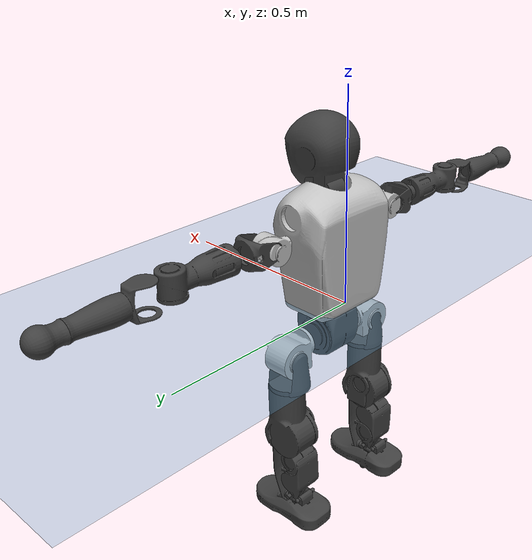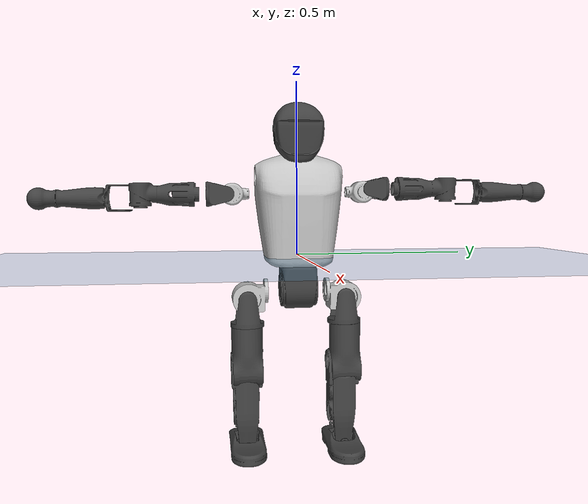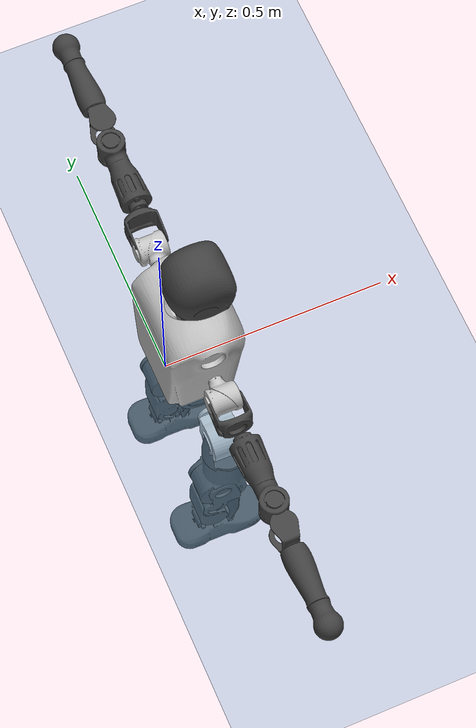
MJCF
<mujoco model="T1">
  <compiler angle="radian" assetdir="assets" balanceinertia="true" inertiafromgeom="false"/>

  <option timestep="0.005" density="1.2" viscosity="2e-05"/>

  <size nkey="1"/>

  <visual>
    <quality shadowsize="8192"/>
    <map shadowclip="0.5"/>
  </visual>

  <default>
    <default class="/">
      <joint armature="0.01" damping="0.01" frictionloss="0.1"/>
      <geom contype="0" conaffinity="0" group="1" solref="-1000 -80"/>
      <site size="0.01 0.005 0.005" group="5"/>
      <general forcelimited="true" biastype="affine" gainprm="25" biasprm="0 -25 -0.6"/>
      <default class="t1">
        <geom rgba="0.25 0.25 0.25 1"/>
        <default class="visual">
          <geom type="mesh" group="2"/>
        </default>
        <default class="collision">
          <geom group="3"/>
        </default>
        <default class="foot">
          <geom size="0.1115 0.05 0.015" type="box" condim="6" group="4" priority="1" solimp="0.015 1 0.015"/>
        </default>
        <default class="reward_collision_sphere">
          <geom group="5" rgba="1 0 0 1"/>
        </default>
      </default>
    </default>
  </default>

  <asset>
    <texture type="skybox" colorspace="auto" name="//unnamed_texture_0" builtin="gradient" rgb1="0.95 0.95 0.95" rgb2="0.95 0.95 0.95" width="100" height="600"/>
    <texture type="2d" colorspace="auto" name="texplane" builtin="checker" rgb1="0.345 0.575 0.748" rgb2="0.345 0.575 0.748" markrgb="1 1 1" width="512" height="512"/>
    <material name="MatPlane" class="/" texture="texplane" texuniform="true" texrepeat="2 2" specular="0.9"/>
    <mesh name="Trunk" class="/" file="Trunk.stl"/>
    <mesh name="H1" class="/" file="H1.stl"/>
    <mesh name="H2" class="/" file="H2.stl"/>
    <mesh name="AL1" class="/" file="AL1.stl"/>
    <mesh name="AL2" class="/" file="AL2.stl"/>
    <mesh name="AL3" class="/" file="AL3.stl"/>
    <mesh name="left_hand_link" class="/" file="left_hand_link.stl"/>
    <mesh name="AR1" class="/" file="AR1.stl"/>
    <mesh name="AR2" class="/" file="AR2.stl"/>
    <mesh name="AR3" class="/" file="AR3.stl"/>
    <mesh name="right_hand_link" class="/" file="right_hand_link.stl"/>
    <mesh name="Waist" class="/" file="Waist.stl"/>
    <mesh name="Hip_Pitch_Left" class="/" file="Hip_Pitch_Left.stl"/>
    <mesh name="Hip_Roll_Left" class="/" file="Hip_Roll_Left.stl"/>
    <mesh name="Hip_Yaw_Left" class="/" file="Hip_Yaw_Left.stl"/>
    <mesh name="Shank_Left" class="/" file="Shank_Left.stl"/>
    <mesh name="Ankle_Cross_Left" class="/" file="Ankle_Cross_Left.stl"/>
    <mesh name="left_foot_link" class="/" file="left_foot_link.stl"/>
    <mesh name="Hip_Pitch_Right" class="/" file="Hip_Pitch_Right.stl"/>
    <mesh name="Hip_Roll_Right" class="/" file="Hip_Roll_Right.stl"/>
    <mesh name="Hip_Yaw_Right" class="/" file="Hip_Yaw_Right.stl"/>
    <mesh name="Shank_Right" class="/" file="Shank_Right.stl"/>
    <mesh name="Ankle_Cross_Right" class="/" file="Ankle_Cross_Right.stl"/>
    <mesh name="right_foot_link" class="/" file="right_foot_link.stl"/>
  </asset>

  <worldbody>
    <geom name="floor" class="/" size="100 100 0.125" type="plane" group="0" material="MatPlane"/>
    <light name="toplight_shadow" class="/" pos="0 0 5" dir="0.0990148 0.0990148 -0.990148" type="directional" ambient="0.04 0.04 0.04" diffuse="0.55 0.55 0.55" specular="0.12 0.12 0.12"/>
    <light name="toplight_fill" class="/" pos="0 0 5" dir="0.0990148 0.0990148 -0.990148" type="directional" castshadow="false" ambient="0.04 0.04 0.04" diffuse="0.3 0.3 0.3" specular="0.08 0.08 0.08"/>
    <body name="trunk" childclass="t1" pos="-0.000631472 -0.00409952 0.00836613" quat="0.999989 0.00299792 0.00321541 0.00152816">
      <inertial pos="0.0566658 -0.00155353 0.0866773" quat="0.999952 -0.000127981 -0.00980064 0.000228377" mass="15.0261" diaginertia="0.10822 0.360792 0.0210254"/>
      <joint name="//unnamed_joint_0" type="free" armature="0" damping="0" frictionloss="0"/>
      <geom name="//unnamed_geom_1" class="visual" rgba="0.76 0.76 0.76 1" mesh="Trunk"/>
      <geom name="//unnamed_geom_2" class="collision" size="0.0789285 0.105238 0.157857" pos="0.0605332 0 0.0962535" type="box"/>
      <geom name="//unnamed_geom_3" class="reward_collision_sphere" size="0.121024" pos="0.0605332 0 0.0802112"/>
      <geom name="//unnamed_geom_4" class="reward_collision_sphere" size="0.0157857" pos="0.0605332 0.114422 0"/>
      <geom name="//unnamed_geom_5" class="reward_collision_sphere" size="0.0157857" pos="0.0605332 -0.114422 0"/>
      <geom name="//unnamed_geom_6" class="reward_collision_sphere" size="0.0157857" pos="0.0605332 0.144037 0.14438"/>
      <geom name="//unnamed_geom_7" class="reward_collision_sphere" size="0.0157857" pos="0.0605332 -0.144037 0.14438"/>
      <site name="imu" pos="0.0408496 -0.00961439 -0.00620625" size="0.0105238"/>
      <camera name="track" pos="0 -2.69228 0" quat="0.707107 0.707107 0 0" mode="trackcom"/>
      <camera name="ego_camera" pos="0.123084 0 0.336887" quat="-0.5 -0.5 0.5 0.5"/>
      <body name="H1" pos="0.0585151 -0.00101239 0.189856" quat="0.999993 -0.00154445 0.00327165 -0.00125876">
        <inertial pos="-0.00669722 -0.00442583 0.0464313" quat="0.763296 -0.0146611 0.0117972 0.645775" mass="0.498434" diaginertia="0.000246908 0.000913747 5.34173e-05"/>
        <joint name="AAHead_yaw" pos="0 0 0" axis="0.00979644 0.00105994 0.999951" stiffness="0.00087359" range="-1.3711 1.56996" armature="0.0114547" damping="0.0179803" frictionloss="0.0987445"/>
        <geom name="//unnamed_geom_8" class="visual" mesh="H1"/>
        <body name="H2" pos="-0.000850796 1.17218e-05 0.0442687" quat="0.99999 0.00441823 3.07696e-05 0.000120289">
          <inertial pos="0.00783957 0.00250395 0.0784936" quat="0.98847 0.106213 -0.0743672 -0.0781954" mass="0.828534" diaginertia="0.00228347 0.00919389 0.000576412"/>
          <joint name="Head_pitch" pos="0 0 0" axis="0.0355544 -0.999212 0.0176667" stiffness="0.0072295" range="-1.11835 0.184337" armature="0.00692757" damping="0" frictionloss="0.0585618"/>
          <geom name="//unnamed_geom_9" class="visual" mesh="H2"/>
          <geom name="//unnamed_geom_10" class="collision" size="0.0841904" pos="0.0100889 0 0.0882323"/>
          <geom name="//unnamed_geom_11" class="reward_collision_sphere" size="0.0947142" pos="0.0201777 0 0.0802112"/>
        </body>
      </body>
      <body name="AL1" pos="0.0497359 0.139856 0.173076" quat="0.999999 -0.0010523 0.000564655 -0.000718737">
        <inertial pos="0.00833193 0.0621407 0.00208589" quat="0.509764 0.514473 -0.493412 0.481667" mass="0.643031" diaginertia="0.00149352 0.00522856 9.90588e-05"/>
        <joint name="Left_Shoulder_Pitch" pos="0 0 0" axis="0.00143153 0.999981 -0.00593108" stiffness="0.00162189" range="-3.3269 1.21482" armature="0.0113137" damping="0" frictionloss="0.11293"/>
        <geom name="//unnamed_geom_12" class="visual" rgba="0.76 0.76 0.76 1" mesh="AL1"/>
        <body name="AL2" pos="0.00120679 0.0655443 0.00912936" quat="0.999991 -0.000791603 -0.00174231 -0.00367423">
          <inertial pos="0.00524907 0.0490027 0.0070596" quat="0.49536 0.510725 -0.484746 0.508725" mass="0.176271" diaginertia="0.000425524 0.00162977 5.99222e-05"/>
          <joint name="Left_Shoulder_Roll" pos="0 0 0" axis="-0.999119 0.00129603 0.0419435" range="-1.54988 1.7292" armature="0.011409" damping="0.0116302" frictionloss="0.148932"/>
          <geom name="//unnamed_geom_13" class="visual" mesh="AL2"/>
          <body name="AL3" pos="0.00871009 0.0837883 -0.000193977" quat="0.999999 -0.000922551 -0.000627916 -0.000686804">
            <inertial pos="-0.00110333 0.115251 -0.00732289" quat="0.706114 0.708098 0.000589393 0.000676929" mass="1.16426" diaginertia="0.0131772 0.0554077 0.000214223"/>
            <joint name="Left_Elbow_Pitch" pos="0 0 0" axis="-0.0184977 -0.999277 0.0332066" range="-2.25176 2.25218" armature="0.0107539" damping="0.000854222" frictionloss="0.0968572"/>
            <geom name="//unnamed_geom_14" class="visual" mesh="AL3"/>
            <geom name="//unnamed_geom_15" class="collision" size="0.0315714 0.0789285" pos="0 0.0673071 0" quat="0.707105 0.707108 0 0" type="cylinder"/>
            <geom name="//unnamed_geom_16" class="reward_collision_sphere" size="0.0378857"/>
            <body name="left_hand_link" pos="0.00421892 0.205844 -0.00925584" quat="1 -4.91278e-05 0.000294337 0.000316978">
              <inertial pos="-0.000280712 0.145365 -0.00456046" quat="0.704533 0.709623 0.00479421 0.00670155" mass="0.344874" diaginertia="0.00838382 0.0300731 6.34086e-05"/>
              <joint name="Left_Elbow_Yaw" pos="0 0 0" axis="0.0195427 -0.0294769 0.999374" stiffness="0.0229023" range="-2.44937 0.0401297" armature="0.0116831" damping="0.018798" frictionloss="0.0844918"/>
              <geom name="//unnamed_geom_17" class="visual" mesh="left_hand_link"/>
              <geom name="//unnamed_geom_18" class="collision" size="0.0315714 0.0920833" pos="0 0.174998 0" quat="0.707105 0.707108 0 0" type="cylinder"/>
              <geom name="//unnamed_geom_19" class="reward_collision_sphere" size="0.052619"/>
              <geom name="//unnamed_geom_20" class="reward_collision_sphere" size="0.0368333" pos="0 0.148076 0"/>
              <geom name="//unnamed_geom_21" class="reward_collision_sphere" size="0.0368333" pos="0 0.289421 0"/>
            </body>
          </body>
        </body>
      </body>
      <body name="AR1" pos="0.0525176 -0.139668 0.169183" quat="0.999992 0.00325535 0.00212703 -0.00102236">
        <inertial pos="-0.00119985 -0.0586234 0.000710622" quat="0.494571 0.499201 -0.506503 0.499653" mass="0.609401" diaginertia="0.00155547 0.00584781 9.65361e-05"/>
        <joint name="Right_Shoulder_Pitch" pos="0 0 0" axis="-0.000697862 -0.999998 0.00192614" stiffness="0.0325865" range="-1.21681 3.22765" armature="0.0105011" damping="0.0366312" frictionloss="0.115207"/>
        <geom name="//unnamed_geom_22" class="visual" rgba="0.76 0.76 0.76 1" mesh="AR1"/>
        <body name="AR2" pos="-0.000505031 -0.0632361 0.00015722" quat="0.999998 -0.00164439 -0.000979001 -0.000157876">
          <inertial pos="0.00525595 -0.0499143 -0.00439986" quat="0.513765 0.487417 -0.504862 0.493542" mass="0.204491" diaginertia="0.000373523 0.00151034 6.43572e-05"/>
          <joint name="Right_Shoulder_Roll" pos="0 0 0" axis="-0.999923 0.0124356 0.000366499" range="-1.73568 1.58804" armature="0.0104806" damping="0" frictionloss="0.0683569"/>
          <geom name="//unnamed_geom_23" class="visual" mesh="AR2"/>
          <body name="AR3" pos="0.00100372 -0.0877615 0.000175241" quat="1 -8.70239e-05 -1.51442e-05 8.22784e-05">
            <inertial pos="0.00886981 -0.112672 0.000749689" quat="0.697813 0.716002 -0.0173335 0.00985482" mass="1.08056" diaginertia="0.0143248 0.0618595 0.000205632"/>
            <joint name="Right_Elbow_Pitch" pos="0 0 0" axis="-0.00119116 0.99991 0.013395" stiffness="0.0458795" range="-2.2809 2.31991" armature="0.0137888" damping="0.0073311" frictionloss="0.0952293"/>
            <geom name="//unnamed_geom_24" class="visual" mesh="AR3"/>
            <geom name="//unnamed_geom_25" class="collision" size="0.0315714 0.0789285" pos="0 -0.0673071 0" quat="0.707105 0.707108 0 0" type="cylinder"/>
            <geom name="//unnamed_geom_26" class="reward_collision_sphere" size="0.0378857"/>
            <body name="right_hand_link" pos="-0.00131036 -0.197815 -0.00902784" quat="1 5.51742e-05 -5.76143e-05 3.96876e-05">
              <inertial pos="0.00435302 -0.152889 0.000761491" quat="0.706723 0.70749 0.000823147 0.000315544" mass="0.39356" diaginertia="0.00865464 0.0375482 7.13282e-05"/>
              <joint name="Right_Elbow_Yaw" pos="0 0 0" axis="0.00310067 0.00247007 0.999992" range="-0.0406848 2.43425" armature="0.0110118" damping="0.0192164" frictionloss="0.116094"/>
              <geom name="//unnamed_geom_27" class="visual" mesh="right_hand_link"/>
              <geom name="//unnamed_geom_28" class="collision" size="0.0315714 0.0920833" pos="0 -0.174998 0" quat="0.707105 0.707108 0 0" type="cylinder"/>
              <geom name="//unnamed_geom_29" class="reward_collision_sphere" size="0.052619"/>
              <geom name="//unnamed_geom_30" class="reward_collision_sphere" size="0.0368333" pos="0 -0.148076 0"/>
              <geom name="//unnamed_geom_31" class="reward_collision_sphere" size="0.0368333" pos="0 -0.289421 0"/>
            </body>
          </body>
        </body>
      </body>
      <body name="Waist" pos="0.0625495 -0.00209154 -0.0980877" quat="1 -0.000136111 0.000477164 0.000219052">
        <inertial pos="-0.00034471 0.00161605 0.00455336" quat="0.982507 -0.00217541 -0.186189 -0.00283821" mass="3.01737" diaginertia="0.00593714 0.0213813 0.00166212"/>
        <joint name="Waist" pos="0 0 0" axis="-0.000577411 0.00177614 0.999998" stiffness="0.0161369" range="-1.4658 1.51764" armature="0.0115532" damping="0.0439896" frictionloss="0.103478"/>
        <geom name="//unnamed_geom_32" class="visual" mesh="Waist"/>
        <body name="Hip_Pitch_Left" pos="0.00406029 0.133185 -0.00755669" quat="0.999999 0.000386594 0.00116471 5.68271e-05">
          <inertial pos="0.00486083 -0.00828301 -0.00529356" quat="0.975111 0.221157 0.0152545 0.00395597" mass="1.06728" diaginertia="0.00178467 0.00657342 0.000420131"/>
          <joint name="Left_Hip_Pitch" pos="0 0 0" axis="0.0161345 0.999844 0.00721759" stiffness="0.0284663" range="-1.92426 1.60202" armature="0.0107158" damping="0.0379007" frictionloss="0.139814"/>
          <geom name="//unnamed_geom_33" class="visual" rgba="0.76 0.76 0.76 1" mesh="Hip_Pitch_Left"/>
          <body name="Hip_Roll_Left" pos="-0.00177704 0.000720459 -0.0204192" quat="1 -3.93168e-05 9.27994e-05 -3.40092e-05">
            <inertial pos="0.00034515 -0.00107963 -0.0435025" quat="0.707384 -0.0125927 0.000963078 0.706717" mass="0.410016" diaginertia="0.00168449 0.00602212 0.000163725"/>
            <joint name="Left_Hip_Roll" pos="0 0 0" axis="-0.999994 -0.00195769 -0.00295236" range="-1.66764 0.197872" armature="0.0102196" damping="0" frictionloss="0.130844"/>
            <geom name="//unnamed_geom_34" class="visual" mesh="Hip_Roll_Left"/>
            <geom name="//unnamed_geom_35" class="reward_collision_sphere" size="0.0578809"/>
            <body name="Hip_Yaw_Left" pos="0.00592837 0.00113905 -0.0756841" quat="1 -1.49421e-05 -9.83604e-06 -3.70735e-05">
              <inertial pos="-0.00596684 0.00126044 -0.0636495" quat="0.696495 -0.0375134 -0.0317657 0.715876" mass="2.71918" diaginertia="0.0239871 0.113523 0.000888407"/>
              <joint name="Left_Hip_Yaw" pos="0 0 0" axis="0.0177848 0.0204186 -0.999633" stiffness="0.0467413" range="-1.03857 0.897941" armature="0.0132777" damping="0.0232305" frictionloss="0.14304"/>
              <geom name="//unnamed_geom_36" class="visual" mesh="Hip_Yaw_Left"/>
              <geom name="//unnamed_geom_37" class="collision" size="0.052619 0.0841904" type="cylinder"/>
              <body name="Shank_Left" pos="-0.0103243 -0.00777568 -0.114857" quat="0.99999 0.00126139 0.004162 -0.0009563">
                <inertial pos="-0.00847516 0.0101749 -0.0988735" quat="0.998621 0.0148482 0.00631198 0.0499658" mass="1.91773" diaginertia="0.0324769 0.144237 0.000613333"/>
                <joint name="Left_Knee_Pitch" pos="0 0 0" axis="0.0118309 0.999925 0.0031337" range="-0.00749675 2.33854" armature="0.00792108" damping="0.00125656" frictionloss="0.145776"/>
                <geom name="//unnamed_geom_38" class="visual" mesh="Shank_Left"/>
                <geom name="//unnamed_geom_39" class="collision" size="0.052619 0.0789285" pos="0 0 -0.0962535" type="cylinder"/>
                <geom name="//unnamed_geom_40" class="reward_collision_sphere" size="0.0684047"/>
                <body name="Ankle_Cross_Left" pos="0.0090893 0.000926544 -0.225533" quat="1 -1.38692e-05 2.44869e-06 -3.27073e-06">
                  <inertial pos="-0.00157888 -0.00188718 -0.00440988" quat="0.45163 0.557305 0.567731 0.403886" mass="0.0842705" diaginertia="3.01582e-05 0.000110311 3.77486e-06"/>
                  <joint name="Left_Ankle_Pitch" pos="0 0 0" axis="-0.01098 0.999801 -0.0166774" range="-0.872391 0.490339" armature="0.0110876" damping="0" frictionloss="0.0975364"/>
                  <geom name="//unnamed_geom_41" class="visual" mesh="Ankle_Cross_Left"/>
                  <body name="left_foot_link" pos="-0.00502016 0.00237758 -0.0113162" quat="0.999998 -0.00148835 0.00135277 0.000283712">
                    <inertial pos="0.00118766 0.000826709 -0.0169152" quat="-4.1833e-05 0.619107 0.00240803 0.785303" mass="0.846836" diaginertia="0.00302821 0.0103736 0.000760086"/>
                    <joint name="Left_Ankle_Roll" pos="0 0 0" axis="-0.999869 -0.00997199 0.0127853" range="-0.348207 0.404068" armature="0.0108914" damping="0" frictionloss="0.102803"/>
                    <geom name="//unnamed_geom_42" class="visual" mesh="left_foot_link"/>
                    <geom name="left_foot" class="foot" size="0.0840368 0.036887 0.0144746" pos="0.0100889 0 -0.0120317"/>
                    <geom name="//unnamed_geom_44" class="reward_collision_sphere" size="0.0547238" pos="0.0100889 0 -0.0120317"/>
                    <geom name="//unnamed_geom_45" class="reward_collision_sphere" size="0.0315714" pos="0.0958442 -0.0309613 -0.0120317"/>
                    <geom name="//unnamed_geom_46" class="reward_collision_sphere" size="0.0315714" pos="-0.070622 -0.0309613 -0.0120317"/>
                    <site name="left_foot" class="foot" pos="0.0100889 0 -0.0120317" size="0.0105238"/>
                  </body>
                </body>
              </body>
            </body>
          </body>
        </body>
        <body name="Hip_Pitch_Right" pos="0.00500779 -0.144449 -0.00717468" quat="0.999992 0.00139682 -0.00073659 -0.00369389">
          <inertial pos="0.000912667 0.0192309 -0.0140727" quat="0.974884 -0.222168 0.015591 0.000538547" mass="1.19055" diaginertia="0.00193514 0.00653325 0.000402058"/>
          <joint name="Right_Hip_Pitch" pos="0 0 0" axis="-0.00474909 -0.999947 0.00908681" stiffness="0.0138682" range="-1.64572 1.93811" armature="0.0105876" damping="0" frictionloss="0.059102"/>
          <geom name="//unnamed_geom_47" class="visual" rgba="0.76 0.76 0.76 1" mesh="Hip_Pitch_Right"/>
          <body name="Hip_Roll_Right" pos="0.00712466 -0.00285233 -0.0216014" quat="1 0.000566738 0.000568968 0.00026825">
            <inertial pos="0.00189 -0.000530305 -0.0452126" quat="0.706942 -0.00809253 -0.00545086 0.707204" mass="0.449274" diaginertia="0.00205959 0.00664872 0.000170421"/>
            <joint name="Right_Hip_Roll" pos="0 0 0" axis="-0.999927 -0.00845117 -0.00866075" stiffness="0.00652215" range="-0.283231 1.58957" armature="0.00925381" damping="0.0148305" frictionloss="0.0723608"/>
            <geom name="//unnamed_geom_48" class="visual" mesh="Hip_Roll_Right"/>
            <geom name="//unnamed_geom_49" class="reward_collision_sphere" size="0.0578809"/>
            <body name="Hip_Yaw_Right" pos="-0.00632187 -0.00142327 -0.0722826" quat="1 0.000544171 6.509e-06 0.000201161">
              <inertial pos="-0.00063184 -0.00976099 -0.0707404" quat="0.720766 -0.028475 -0.0335599 0.691779" mass="2.85987" diaginertia="0.0273415 0.124456 0.000978079"/>
              <joint name="Right_Hip_Yaw" pos="0 0 0" axis="0.00149678 -0.00372072 -0.999992" range="-0.984847 1.03009" armature="0.011072" damping="0" frictionloss="0.105777"/>
              <geom name="//unnamed_geom_50" class="visual" mesh="Hip_Yaw_Right"/>
              <geom name="//unnamed_geom_51" class="collision" size="0.052619 0.0841904" type="cylinder"/>
              <body name="Shank_Right" pos="-0.0180663 -0.00304566 -0.116475" quat="1 -0.000525183 -0.000280096 -0.000245455">
                <inertial pos="0.00429462 -0.000830227 -0.0940454" quat="0.997393 0.0373992 -0.0385599 -0.0481809" mass="2.18382" diaginertia="0.0403272 0.160176 0.000742402"/>
                <joint name="Right_Knee_Pitch" pos="0 0 0" axis="-0.00251796 -0.999987 -0.00449241" range="-2.32897 0.146205" armature="0.0113401" damping="0.00997102" frictionloss="0.129717"/>
                <geom name="//unnamed_geom_52" class="visual" mesh="Shank_Right"/>
                <geom name="//unnamed_geom_53" class="collision" size="0.052619 0.0789285" pos="0 0 -0.0962535" type="cylinder"/>
                <geom name="//unnamed_geom_54" class="reward_collision_sphere" size="0.0684047"/>
                <body name="Ankle_Cross_Right" pos="0.0025102 0.00200025 -0.217834" quat="1 0.000227375 -5.8219e-05 0.000276333">
                  <inertial pos="-0.00622892 0.00284925 -0.00870181" quat="0.435491 0.546873 0.551103 0.455591" mass="0.0884853" diaginertia="3.06666e-05 0.000110946 3.73549e-06"/>
                  <joint name="Right_Ankle_Pitch" pos="0 0 0" axis="0.00785421 -0.99995 0.00620292" range="-0.553425 0.79075" armature="0.00973876" damping="0.00261943" frictionloss="0.107682"/>
                  <geom name="//unnamed_geom_55" class="visual" mesh="Ankle_Cross_Right"/>
                  <body name="right_foot_link" pos="-0.00277167 -0.00144364 -0.0138801" quat="0.999999 -0.000118784 0.000188817 0.00106881">
                    <inertial pos="0.00146116 0.00116605 -0.0165128" quat="-0.00144109 0.616747 -0.00511735 0.787144" mass="0.791887" diaginertia="0.00279579 0.011161 0.000731705"/>
                    <joint name="Right_Ankle_Roll" pos="0 0 0" axis="-0.999988 0.00175816 -0.00446866" range="-0.444824 0.477561" armature="0.0115263" damping="0.0117394" frictionloss="0.0520924"/>
                    <geom name="//unnamed_geom_56" class="visual" mesh="right_foot_link"/>
                    <geom name="right_foot" class="foot" size="0.0958979 0.0712086 0.00986687" pos="0.0100889 0 -0.0120317"/>
                    <geom name="//unnamed_geom_58" class="reward_collision_sphere" size="0.0420952"/>
                    <geom name="//unnamed_geom_59" class="reward_collision_sphere" size="0.0315714" pos="0.0100889 0 -0.0120317"/>
                    <geom name="//unnamed_geom_60" class="reward_collision_sphere" size="0.0315714" pos="0.0958442 0.0309613 -0.0120317"/>
                    <geom name="//unnamed_geom_61" class="reward_collision_sphere" size="0.0315714" pos="-0.070622 0.0309613 -0.0120317"/>
                    <site name="right_foot" class="foot" pos="0.0100889 0 -0.0120317" size="0.0105238"/>
                  </body>
                </body>
              </body>
            </body>
          </body>
        </body>
      </body>
    </body>
  </worldbody>

  <contact>
    <pair class="/" geom1="floor" geom2="left_foot" name="//unnamed_contact_0"/>
    <pair class="/" geom1="floor" geom2="right_foot" name="//unnamed_contact_1"/>
  </contact>

  <actuator>
    <general name="AAHead_yaw" class="/" joint="AAHead_yaw" forcerange="-7.6053 7.6053" gainprm="22.528" biasprm="0 -22.528 -0.666159"/>
    <general name="Head_pitch" class="/" joint="Head_pitch" forcerange="-6.79706 6.79706" gainprm="22.528" biasprm="0 -22.528 -0.666159"/>
    <general name="Left_Shoulder_Pitch" class="/" joint="Left_Shoulder_Pitch" forcerange="-20.1877 20.1877" gainprm="22.528" biasprm="0 -22.528 -0.666159"/>
    <general name="Left_Shoulder_Roll" class="/" joint="Left_Shoulder_Roll" forcerange="-18.9757 18.9757" gainprm="22.528" biasprm="0 -22.528 -0.666159"/>
    <general name="Left_Elbow_Pitch" class="/" joint="Left_Elbow_Pitch" forcerange="-23.8046 23.8046" gainprm="22.528" biasprm="0 -22.528 -0.666159"/>
    <general name="Left_Elbow_Yaw" class="/" joint="Left_Elbow_Yaw" forcerange="-18.8899 18.8899" gainprm="22.528" biasprm="0 -22.528 -0.666159"/>
    <general name="Right_Shoulder_Pitch" class="/" joint="Right_Shoulder_Pitch" forcerange="-19.7259 19.7259" gainprm="22.528" biasprm="0 -22.528 -0.666159"/>
    <general name="Right_Shoulder_Roll" class="/" joint="Right_Shoulder_Roll" forcerange="-16.4578 16.4578" gainprm="22.528" biasprm="0 -22.528 -0.666159"/>
    <general name="Right_Elbow_Pitch" class="/" joint="Right_Elbow_Pitch" forcerange="-19.2717 19.2717" gainprm="22.528" biasprm="0 -22.528 -0.666159"/>
    <general name="Right_Elbow_Yaw" class="/" joint="Right_Elbow_Yaw" forcerange="-20.3718 20.3718" gainprm="22.528" biasprm="0 -22.528 -0.666159"/>
    <general name="Waist" class="/" joint="Waist" forcerange="-30.3377 30.3377" gainprm="22.528" biasprm="0 -22.528 -0.666159"/>
    <general name="Left_Hip_Pitch" class="/" joint="Left_Hip_Pitch" forcerange="-49.3876 49.3876" gainprm="22.528" biasprm="0 -22.528 -0.666159"/>
    <general name="Left_Hip_Roll" class="/" joint="Left_Hip_Roll" forcerange="-21.1596 21.1596" gainprm="22.528" biasprm="0 -22.528 -0.666159"/>
    <general name="Left_Hip_Yaw" class="/" joint="Left_Hip_Yaw" forcerange="-36.0543 36.0543" gainprm="22.528" biasprm="0 -22.528 -0.666159"/>
    <general name="Left_Knee_Pitch" class="/" joint="Left_Knee_Pitch" forcerange="-43.625 43.625" gainprm="22.528" biasprm="0 -22.528 -0.666159"/>
    <general name="Left_Ankle_Pitch" class="/" joint="Left_Ankle_Pitch" forcerange="-23.8703 23.8703" gainprm="22.528" biasprm="0 -22.528 -0.666159"/>
    <general name="Left_Ankle_Roll" class="/" joint="Left_Ankle_Roll" forcerange="-17.5716 17.5716" gainprm="22.528" biasprm="0 -22.528 -0.666159"/>
    <general name="Right_Hip_Pitch" class="/" joint="Right_Hip_Pitch" forcerange="-60.2867 60.2867" gainprm="22.528" biasprm="0 -22.528 -0.666159"/>
    <general name="Right_Hip_Roll" class="/" joint="Right_Hip_Roll" forcerange="-29.6736 29.6736" gainprm="22.528" biasprm="0 -22.528 -0.666159"/>
    <general name="Right_Hip_Yaw" class="/" joint="Right_Hip_Yaw" forcerange="-26.8375 26.8375" gainprm="22.528" biasprm="0 -22.528 -0.666159"/>
    <general name="Right_Knee_Pitch" class="/" joint="Right_Knee_Pitch" forcerange="-64.1194 64.1194" gainprm="22.528" biasprm="0 -22.528 -0.666159"/>
    <general name="Right_Ankle_Pitch" class="/" joint="Right_Ankle_Pitch" forcerange="-21.2124 21.2124" gainprm="22.528" biasprm="0 -22.528 -0.666159"/>
    <general name="Right_Ankle_Roll" class="/" joint="Right_Ankle_Roll" forcerange="-14.5741 14.5741" gainprm="22.528" biasprm="0 -22.528 -0.666159"/>
  </actuator>

  <sensor>
    <gyro site="imu" name="imu_angular_velocity"/>
    <velocimeter site="imu" name="imu_linear_velocity"/>
    <framelinvel objtype="site" objname="left_foot" name="left_foot_global_linear_velocity"/>
    <framelinvel objtype="site" objname="right_foot" name="right_foot_global_linear_velocity"/>
  </sensor>

  <keyframe>
    <key name="home" qpos="0 0 0.6385 1 0 0 0 0 0 0 1.4 0 -0.4 0 -1.4 0 0.4 0 -0.4 0 0 0.8 -0.4 0 0.4 0 0 -0.8 0.4 0"/>
  </keyframe>
</mujoco>
